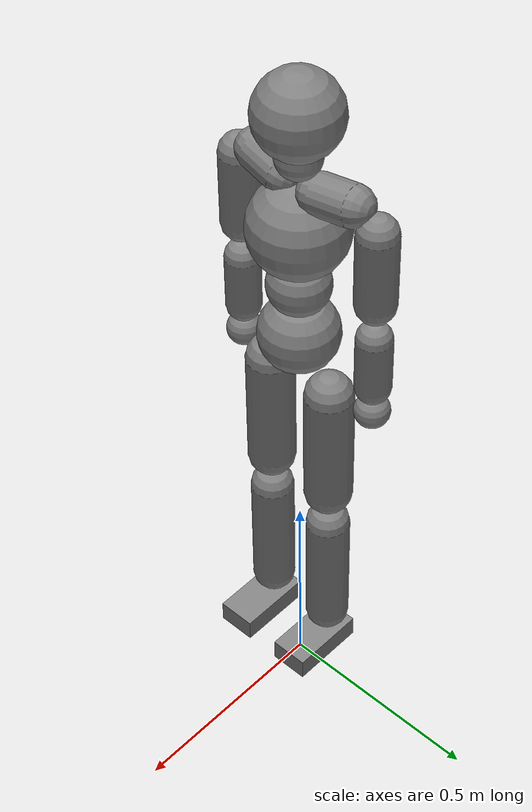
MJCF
<mujoco model="humanoid">

  <statistic extent="2" center="0 0 1" />

  <option timestep="0.00555" />

  <worldbody>
    <body name="pelvis" pos="0 0 1">
      <site name="root" size=".01 .01 .02" group="3" type="box" rgba="1 0 0 1" />
      <geom name="pelvis" type="sphere" pos="0 0 0.07" size=".09" density="2226" condim="1" friction="1.0 0.05 0.05" solimp=".9 .99 .003" solref=".015 1" />
      <geom name="upper_waist" type="sphere" pos="0 0 0.205" size="0.07" density="2226" condim="1" friction="1.0 0.05 0.05" solimp=".9 .99 .003" solref=".015 1" />
      <site name="pelvis" type="sphere" pos="0 0 0.07" size="0.091" group="3" rgba="0 0 1 .3" />
      <site name="upper_waist" type="sphere" pos="0 0 0.205" size="0.071" group="3" rgba="0 0 1 .3" />

      <body name="torso" pos="0 0 0.236151">
        <light name="top" pos="0 0 2" mode="trackcom" />
        <camera name="back" pos="-3 0 1" xyaxes="0 -1 0 1 0 2" mode="trackcom" />
        <camera name="side" pos="0 -3 1" xyaxes="1 0 0 0 1 2" mode="trackcom" />
        <joint name="abdomen_x" pos="0 0 0" axis="1 0 0" range="-60 60" stiffness="1000" damping="100" armature=".02" type="hinge" limited="true" solimplimit="0 .99 .01" />
        <joint name="abdomen_y" pos="0 0 0" axis="0 1 0" range="-60 90" stiffness="1000" damping="100" armature=".02" type="hinge" limited="true" solimplimit="0 .99 .01" />
        <joint name="abdomen_z" pos="0 0 0" axis="0 0 1" range="-50 50" stiffness="1000" damping="100" armature=".02" type="hinge" limited="true" solimplimit="0 .99 .01" />
        <geom name="torso" type="sphere" pos="0 0 0.12" size="0.11" density="1794" condim="1" friction="1.0 0.05 0.05" solimp=".9 .99 .003" solref=".015 1" />
        <site name="torso" type="sphere" pos="0 0 0.12" size="0.111" group="3" rgba="0 0 1 .3" />

        <geom name="right_clavicle" fromto="-0.0060125 -0.0457775 0.2287955 -0.016835 -0.128177 0.2376182" size=".045" density="1100" type="capsule" condim="1" friction="1.0 0.05 0.05" solimp=".9 .99 .003" solref=".015 1" />
        <geom name="left_clavicle" fromto="-0.0060125 0.0457775 0.2287955 -0.016835 0.128177 0.2376182" size=".045" density="1100" type="capsule" condim="1" friction="1.0 0.05 0.05" solimp=".9 .99 .003" solref=".015 1" />

        <body name="head" pos="0 0 0.223894">
          <joint name="neck_x" axis="1 0 0" range="-50 50" stiffness="100" damping="10" armature=".01" type="hinge" limited="true" solimplimit="0 .99 .01" />
          <joint name="neck_y" axis="0 1 0" range="-40 60" stiffness="100" damping="10" armature=".01" type="hinge" limited="true" solimplimit="0 .99 .01" />
          <joint name="neck_z" axis="0 0 1" range="-45 45" stiffness="100" damping="10" armature=".01" type="hinge" limited="true" solimplimit="0 .99 .01" />
          <geom name="head" type="sphere" pos="0 0 0.175" size="0.095" density="1081" condim="1" friction="1.0 0.05 0.05" solimp=".9 .99 .003" solref=".015 1" />
          <geom name="neck" type="sphere" pos="0 0 0.075" size="0.05" density="1081" condim="1" friction="1.0 0.05 0.05" solimp=".9 .99 .003" solref=".015 1" />
          <site name="head" pos="0 0 0.175" type="sphere" size="0.103" group="3" rgba="0 0 1 .3" />
          <camera name="egocentric" pos=".103 0 0.175" xyaxes="0 -1 0 .1 0 1" fovy="80" />
        </body>

        <body name="right_upper_arm" pos="-0.02405 -0.18311 0.24350">
          <joint name="right_shoulder_x" axis="1 0 0" range="-180 45" stiffness="400" damping="40" armature=".02" type="hinge" limited="true" solimplimit="0 .99 .01" />
          <joint name="right_shoulder_y" axis="0 1 0" range="-180 60" stiffness="400" damping="40" armature=".02" type="hinge" limited="true" solimplimit="0 .99 .01" />
          <joint name="right_shoulder_z" axis="0 0 1" range="-90 90" stiffness="400" damping="40" armature=".02" type="hinge" limited="true" solimplimit="0 .99 .01" />
          <geom name="right_upper_arm" fromto="0 0 -0.05 0 0 -0.23" size=".045" density="982" type="capsule" condim="1" friction="1.0 0.05 0.05" solimp=".9 .99 .003" solref=".015 1" />
          <site name="right_upper_arm" pos="0 0 -0.14" size="0.046 0.1" zaxis="0 0 1" group="3" type="capsule" rgba="0 0 1 .3" />

          <body name="right_lower_arm" pos="0 0 -0.274788">
            <joint name="right_elbow_x" axis="1 0 0" range="-30 30" stiffness="300" damping="30" armature=".01" type="hinge" limited="true" solimplimit="0 .99 .01" />
            <joint name="right_elbow_y" axis="0 1 0" range="-160 0" stiffness="300" damping="30" armature=".01" type="hinge" limited="true" solimplimit="0 .99 .01" />
            <joint name="right_elbow_z" axis="0 0 1" range="-30 30" stiffness="300" damping="30" armature=".01" type="hinge" limited="true" solimplimit="0 .99 .01" />
            <geom name="right_lower_arm" fromto="0 0 -0.0525 0 0 -0.1875" size="0.04" density="1056" type="capsule" condim="1" friction="1.0 0.05 0.05" solimp=".9 .99 .003" solref=".015 1" />
            <site name="right_lower_arm" pos="0 0 -0.12" size="0.041 0.0685" zaxis="0 1 0" group="3" type="capsule" rgba="0 0 1 .3" />

            <body name="right_hand" pos="0 0 -0.258947">
              <geom name="right_hand" type="sphere" size=".04" density="1865" condim="1" friction="1.0 0.05 0.05" solimp=".9 .99 .003" solref=".015 1" />
              <site name="right_hand" type="sphere" size=".041" group="3" rgba="0 0 1 .3" />
            </body>
          </body>
        </body>

        <body name="left_upper_arm" pos="-0.02405 0.18311 0.24350">
          <joint name="left_shoulder_x" axis="1 0 0" range="-45 180" stiffness="400" damping="40" armature=".02" type="hinge" limited="true" solimplimit="0 .99 .01" />
          <joint name="left_shoulder_y" axis="0 1 0" range="-180 60" stiffness="400" damping="40" armature=".02" type="hinge" limited="true" solimplimit="0 .99 .01" />
          <joint name="left_shoulder_z" axis="0 0 1" range="-90 90" stiffness="400" damping="40" armature=".02" type="hinge" limited="true" solimplimit="0 .99 .01" />
          <geom name="left_upper_arm" fromto="0 0 -0.05 0 0 -0.23" size="0.045" density="982" type="capsule" condim="1" friction="1.0 0.05 0.05" solimp=".9 .99 .003" solref=".015 1" />
          <site name="left_upper_arm" pos="0 0 -0.14" size="0.046 0.1" zaxis="0 0 1" group="3" type="capsule" rgba="0 0 1 .3" />

          <body name="left_lower_arm" pos="0 0 -0.274788">
            <joint name="left_elbow_x" axis="1 0 0" range="-30 30" stiffness="300" damping="30" armature=".01" type="hinge" limited="true" solimplimit="0 .99 .01" />
            <joint name="left_elbow_y" axis="0 1 0" range="-160 0" stiffness="300" damping="30" armature=".01" type="hinge" limited="true" solimplimit="0 .99 .01" />
            <joint name="left_elbow_z" axis="0 0 1" range="-30 30" stiffness="300" damping="30" armature=".01" type="hinge" limited="true" solimplimit="0 .99 .01" />
            <geom name="left_lower_arm" fromto="0 0 -0.0525 0 0 -0.1875" size="0.04" density="1056" type="capsule" condim="1" friction="1.0 0.05 0.05" solimp=".9 .99 .003" solref=".015 1" />
            <site name="left_lower_arm" pos="0 0 -0.1" size="0.041 0.0685" zaxis="0 0 1" group="3" type="capsule" rgba="0 0 1 .3" />

            <body name="left_hand" pos="0 0 -0.258947">
              <geom name="left_hand" type="sphere" size=".04" density="1865" condim="1" friction="1.0 0.05 0.05" solimp=".9 .99 .003" solref=".015 1" />
              <site name="left_hand" type="sphere" size=".041" group="3" rgba="0 0 1 .3" />
            </body>
          </body>
        </body>
      </body>

      <body name="right_thigh" pos="0 -0.084887 0">
        <site name="right_hip" size=".01 .01 .02" group="3" type="box" rgba="1 0 0 1" />
        <joint name="right_hip_x" axis="1 0 0" range="-60 15" stiffness="500" damping="50" armature=".02" type="hinge" limited="true" solimplimit="0 .99 .01" />
        <joint name="right_hip_y" axis="0 1 0" range="-140 60" stiffness="500" damping="50" armature=".02" type="hinge" limited="true" solimplimit="0 .99 .01" />
        <joint name="right_hip_z" axis="0 0 1" range="-60 35" stiffness="500" damping="50" armature=".02" type="hinge" limited="true" solimplimit="0 .99 .01" />
        <geom name="right_thigh" fromto="0 0 -0.06 0 0 -0.36" size="0.055" density="1269" type="capsule" condim="1" friction="1.0 0.05 0.05" solimp=".9 .99 .003" solref=".015 1" />
        <site name="right_thigh" pos="0 0 -0.21" size="0.056 0.301" zaxis="0 0 -1" group="3" type="capsule" rgba="0 0 1 .3" />

        <body name="right_shin" pos="0 0 -0.421546">
          <site name="right_knee" pos="0 0 0" size=".01 .01 .02" group="3" type="box" rgba="1 0 0 1" />
          <joint name="right_knee_x" pos="0 0 0" axis="1 0 0" range="-30 30" stiffness="500" damping="50" armature=".02" type="hinge" limited="true" solimplimit="0 .99 .01" />
          <joint name="right_knee_y" pos="0 0 0" axis="0 1 0" range="0 160" stiffness="500" damping="50" armature=".02" type="hinge" limited="true" solimplimit="0 .99 .01" />
          <joint name="right_knee_z" pos="0 0 0" axis="0 0 1" range="-30 30" stiffness="500" damping="50" armature=".02" type="hinge" limited="true" solimplimit="0 .99 .01" />
          <geom name="right_shin" fromto="0 0 -0.045 0 0 -0.355" size=".05" density="1014" type="capsule" condim="1" friction="1.0 0.05 0.05" solimp=".9 .99 .003" solref=".015 1" />
          <site name="right_shin" pos="0 0 -0.2" size="0.051 0.156" zaxis="0 0 -1" group="3" type="capsule" rgba="0 0 1 .3" />

          <body name="right_foot" pos="0 0 -0.409870">
            <site name="right_ankle" size=".01 .01 .02" group="3" type="box" rgba="1 0 0 1" />
            <joint name="right_ankle_x" pos="0 0 0" axis="1 0 0" range="-30 30" stiffness="400" damping="40" armature=".01" type="hinge" limited="true" solimplimit="0 .99 .01" />
            <joint name="right_ankle_y" pos="0 0 0" axis="0 1 0" range="-55 55" stiffness="400" damping="40" armature=".01" type="hinge" limited="true" solimplimit="0 .99 .01" />
            <joint name="right_ankle_z" pos="0 0 0" axis="0 0 1" range="-40 40" stiffness="400" damping="40" armature=".01" type="hinge" limited="true" solimplimit="0 .99 .01" />
            <geom name="right_foot" type="box" pos="0.045 0 -0.0225" size="0.0885 0.045 0.0275" density="1141" condim="1" friction="1.0 0.05 0.05" solimp=".9 .99 .003" solref=".015 1" />
            <site name="right_foot" type="box" pos="0.045 0 -0.0225" size="0.0895 0.055 0.0285" group="3" rgba="0 0 1 .3" />
          </body>
        </body>
      </body>

      <body name="left_thigh" pos="0 0.084887 0">
        <site name="left_hip" size=".01 .01 .02" group="3" type="box" rgba="1 0 0 1" />
        <joint name="left_hip_x" axis="1 0 0" range="-15 60" stiffness="500" damping="50" armature=".02" type="hinge" limited="true" solimplimit="0 .99 .01" />
        <joint name="left_hip_y" axis="0 1 0" range="-140 60" stiffness="500" damping="50" armature=".02" type="hinge" limited="true" solimplimit="0 .99 .01" />
        <joint name="left_hip_z" axis="0 0 1" range="-35 60" stiffness="500" damping="50" armature=".02" type="hinge" limited="true" solimplimit="0 .99 .01" />
        <geom name="left_thigh" fromto="0 0 -0.06 0 0 -0.36" size=".055" density="1269" type="capsule" condim="1" friction="1.0 0.05 0.05" solimp=".9 .99 .003" solref=".015 1" />
        <site name="left_thigh" pos="0 0 -0.21" size="0.056 0.301" zaxis="0 0 -1" group="3" type="capsule" rgba="0 0 1 .3" />

        <body name="left_shin" pos="0 0 -0.421546">
          <site name="left_knee" pos="0 0 .02" size=".01 .01 .02" group="3" type="box" rgba="1 0 0 1" />
          <joint name="left_knee_x" pos="0 0 0" axis="1 0 0" range="-30 30" stiffness="500" damping="50" armature=".02" type="hinge" limited="true" solimplimit="0 .99 .01" />
          <joint name="left_knee_y" pos="0 0 0" axis="0 1 0" range="0 160" stiffness="500" damping="50" armature=".02" type="hinge" limited="true" solimplimit="0 .99 .01" />
          <joint name="left_knee_z" pos="0 0 0" axis="0 0 1" range="-30 30" stiffness="500" damping="50" armature=".02" type="hinge" limited="true" solimplimit="0 .99 .01" />
          <geom name="left_shin" fromto="0 0 -0.045 0 0 -0.355" size=".05" density="1014" type="capsule" condim="1" friction="1.0 0.05 0.05" solimp=".9 .99 .003" solref=".015 1" />
          <site name="left_shin" pos="0 0 -0.2" size="0.051 0.156" zaxis="0 0 -1" group="3" type="capsule" rgba="0 0 1 .3" />

          <body name="left_foot" pos="0 0 -0.409870">
            <site name="left_ankle" size=".01 .01 .02" group="3" type="box" rgba="1 0 0 1" />
            <joint name="left_ankle_x" pos="0 0 0" axis="1 0 0" range="-30 30" stiffness="400" damping="40" armature=".01" type="hinge" limited="true" solimplimit="0 .99 .01" />
            <joint name="left_ankle_y" pos="0 0 0" axis="0 1 0" range="-55 55" stiffness="400" damping="40" armature=".01" type="hinge" limited="true" solimplimit="0 .99 .01" />
            <joint name="left_ankle_z" pos="0 0 0" axis="0 0 1" range="-40 40" stiffness="400" damping="40" armature=".01" type="hinge" limited="true" solimplimit="0 .99 .01" />
            <geom name="left_foot" type="box" pos="0.045 0 -0.0225" size="0.0885 0.045 0.0275" density="1141" condim="1" friction="1.0 0.05 0.05" solimp=".9 .99 .003" solref=".015 1" />
            <site name="left_foot" type="box" pos="0.045 0 -0.0225" size="0.0895 0.055 0.0285" group="3" rgba="0 0 1 .3" />
          </body>
        </body>
      </body>
    <joint type="free" name="root" limited="false" actuatorfrclimited="false" /></body>
  </worldbody>

  <actuator>
    <motor name="abdomen_x" gear="200" joint="abdomen_x" />
    <motor name="abdomen_y" gear="200" joint="abdomen_y" />
    <motor name="abdomen_z" gear="200" joint="abdomen_z" />
    <motor name="neck_x" gear="50" joint="neck_x" />
    <motor name="neck_y" gear="50" joint="neck_y" />
    <motor name="neck_z" gear="50" joint="neck_z" />
    <motor name="right_shoulder_x" gear="100" joint="right_shoulder_x" />
    <motor name="right_shoulder_y" gear="100" joint="right_shoulder_y" />
    <motor name="right_shoulder_z" gear="100" joint="right_shoulder_z" />
    <motor name="right_elbow_x" gear="70" joint="right_elbow_x" />
    <motor name="right_elbow_y" gear="70" joint="right_elbow_y" />
    <motor name="right_elbow_z" gear="70" joint="right_elbow_z" />
    <motor name="left_shoulder_x" gear="100" joint="left_shoulder_x" />
    <motor name="left_shoulder_y" gear="100" joint="left_shoulder_y" />
    <motor name="left_shoulder_z" gear="100" joint="left_shoulder_z" />
    <motor name="left_elbow_x" gear="70" joint="left_elbow_x" />
    <motor name="left_elbow_y" gear="70" joint="left_elbow_y" />
    <motor name="left_elbow_z" gear="70" joint="left_elbow_z" />
    <motor name="right_hip_x" gear="200" joint="right_hip_x" />
    <motor name="right_hip_z" gear="200" joint="right_hip_z" />
    <motor name="right_hip_y" gear="200" joint="right_hip_y" />
    <motor name="right_knee_x" gear="150" joint="right_knee_x" />
    <motor name="right_knee_y" gear="150" joint="right_knee_y" />
    <motor name="right_knee_z" gear="150" joint="right_knee_z" />
    <motor name="right_ankle_x" gear="90" joint="right_ankle_x" />
    <motor name="right_ankle_y" gear="90" joint="right_ankle_y" />
    <motor name="right_ankle_z" gear="90" joint="right_ankle_z" />
    <motor name="left_hip_x" gear="200" joint="left_hip_x" />
    <motor name="left_hip_z" gear="200" joint="left_hip_z" />
    <motor name="left_hip_y" gear="200" joint="left_hip_y" />
    <motor name="left_knee_x" gear="150" joint="left_knee_x" />
    <motor name="left_knee_y" gear="150" joint="left_knee_y" />
    <motor name="left_knee_z" gear="150" joint="left_knee_z" />
    <motor name="left_ankle_x" gear="90" joint="left_ankle_x" />
    <motor name="left_ankle_y" gear="90" joint="left_ankle_y" />
    <motor name="left_ankle_z" gear="90" joint="left_ankle_z" />
  </actuator>

  <sensor>
    <subtreelinvel name="pelvis_subtreelinvel" body="pelvis" />
    <accelerometer name="root_accel" site="root" />
    <velocimeter name="root_vel" site="root" />
    <gyro name="root_gyro" site="root" />

    <force name="left_ankle_force" site="left_ankle" />
    <force name="right_ankle_force" site="right_ankle" />
    <force name="left_knee_force" site="left_knee" />
    <force name="right_knee_force" site="right_knee" />
    <force name="left_hip_force" site="left_hip" />
    <force name="right_hip_force" site="right_hip" />

    <torque name="left_ankle_torque" site="left_ankle" />
    <torque name="right_ankle_torque" site="right_ankle" />
    <torque name="left_knee_torque" site="left_knee" />
    <torque name="right_knee_torque" site="right_knee" />
    <torque name="left_hip_torque" site="left_hip" />
    <torque name="right_hip_torque" site="right_hip" />

    <touch name="pelvis_touch" site="pelvis" />
    <touch name="upper_waist_touch" site="upper_waist" />
    <touch name="torso_touch" site="torso" />
    <touch name="head_touch" site="head" />
    <touch name="right_upper_arm_touch" site="right_upper_arm" />
    <touch name="right_lower_arm_touch" site="right_lower_arm" />
    <touch name="right_hand_touch" site="right_hand" />
    <touch name="left_upper_arm_touch" site="left_upper_arm" />
    <touch name="left_lower_arm_touch" site="left_lower_arm" />
    <touch name="left_hand_touch" site="left_hand" />
    <touch name="right_thigh_touch" site="right_thigh" />
    <touch name="right_shin_touch" site="right_shin" />
    <touch name="right_foot_touch" site="right_foot" />
    <touch name="left_thigh_touch" site="left_thigh" />
    <touch name="left_shin_touch" site="left_shin" />
    <touch name="left_foot_touch" site="left_foot" />
  </sensor>

</mujoco>
